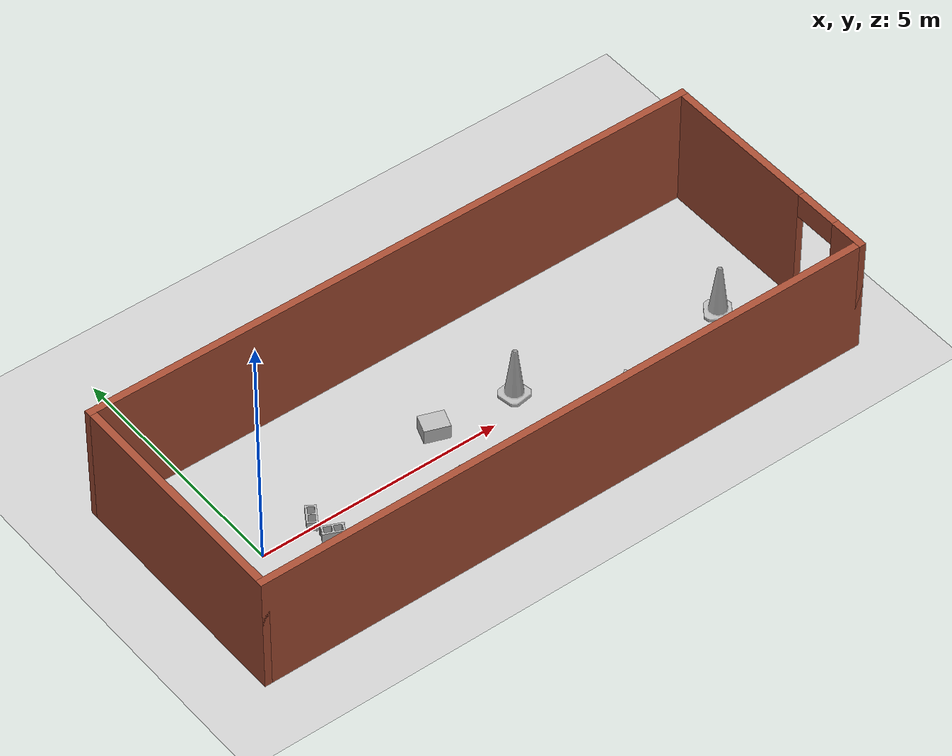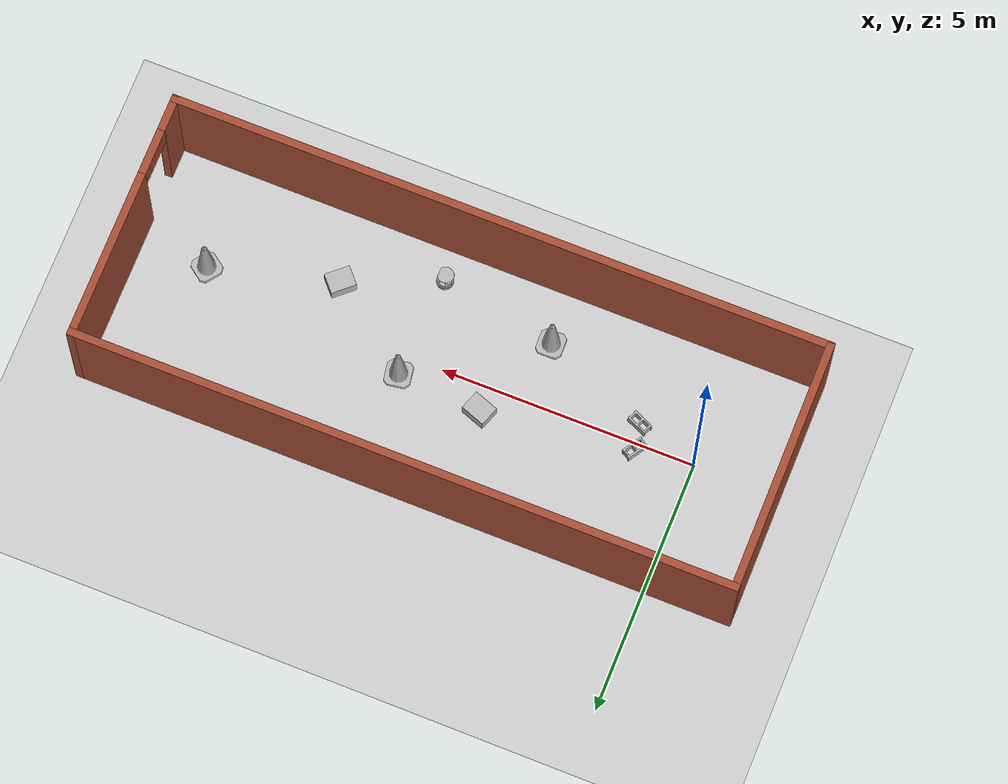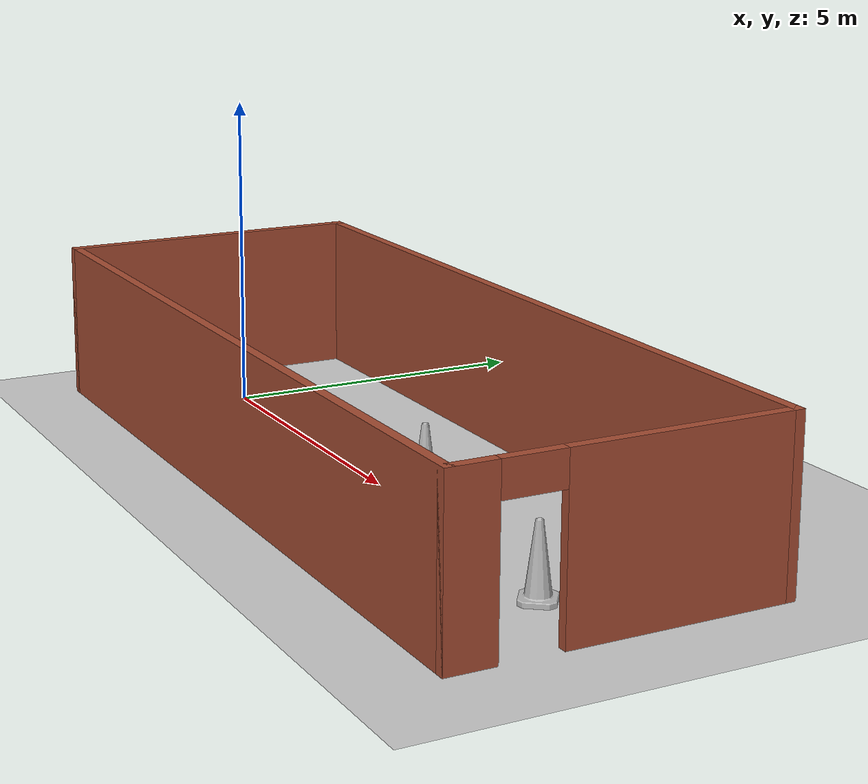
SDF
<sdf version="1.6">
 <world name="default">
  <light name="sun" type="directional">
   <pose>0 0 10 0 -0 0</pose>
   <diffuse>0.8 0.8 0.8 1</diffuse>
   <specular>0.2 0.2 0.2 1</specular>
   <attenuation>
    <range>1000</range>
    <constant>0.9</constant>
    <linear>0.01</linear>
    <quadratic>0.001</quadratic>
   </attenuation>
   <direction>-0.5 0.1 -0.9</direction>
  </light>
  <model name="ground_plane">
   <static>1</static>
   <link name="link">
    <collision name="collision">
     <geometry><plane><normal>0 0 1</normal><size>100 100</size></plane></geometry>
     <surface>
      <contact><collide_bitmask>65535</collide_bitmask></contact>
      <friction><ode><mu>100</mu><mu2>50</mu2></ode></friction>
     </surface>
    </collision>
    <visual name="visual">
     <cast_shadows>0</cast_shadows>
     <geometry><plane><normal>0 0 1</normal><size>100 100</size></plane></geometry>
     <material>
      <script><uri>file://media/materials/scripts/gazebo.material</uri><name>Gazebo/Grey</name></script>
     </material>
    </visual>
   </link>
  </model>
  <gravity>0 0 -9.8</gravity>
  <magnetic_field>6e-06 2.3e-05 -4.2e-05</magnetic_field>
  <atmosphere type="adiabatic"/>
  <physics name="default_physics" default="0" type="ode">
   <max_step_size>0.001</max_step_size>
   <real_time_factor>1</real_time_factor>
   <real_time_update_rate>1000</real_time_update_rate>
  </physics>
  <scene><ambient>0.4 0.4 0.4 1</ambient><background>0.7 0.7 0.7 1</background><shadows>1</shadows></scene>
  <audio><device>default</device></audio>
  <spherical_coordinates>
   <surface_model>EARTH_WGS84</surface_model>
   <latitude_deg>0</latitude_deg>
   <longitude_deg>0</longitude_deg>
   <elevation>0</elevation>
   <heading_deg>0</heading_deg>
  </spherical_coordinates>
  <model name="LargeRoom">
   <pose>4.78804 0.116664 0 0 -0 0</pose>
   <link name="Wall_0">
    <collision name="Wall_0_Collision">
     <geometry><box><size>5 0.15 2.5</size></box></geometry>
     <pose>0 0 1.25 0 -0 0</pose>
    </collision>
    <visual name="Wall_0_Visual">
     <pose>0 0 1.25 0 -0 0</pose>
     <geometry><box><size>5 0.15 2.5</size></box></geometry>
     <material>
      <script><uri>file://media/materials/scripts/gazebo.material</uri><name>Gazebo/Bricks</name></script>
      <ambient>1 1 1 1</ambient>
     </material>
     <meta><layer>0</layer></meta>
    </visual>
    <pose>-6.425 0 0 0 -0 -1.5708</pose>
   </link>
   <link name="Wall_1">
    <collision name="Wall_1_Collision">
     <geometry><box><size>13 0.15 2.5</size></box></geometry>
     <pose>0 0 1.25 0 -0 0</pose>
    </collision>
    <visual name="Wall_1_Visual">
     <pose>0 0 1.25 0 -0 0</pose>
     <geometry><box><size>13 0.15 2.5</size></box></geometry>
     <material>
      <script><uri>file://media/materials/scripts/gazebo.material</uri><name>Gazebo/Bricks</name></script>
      <ambient>1 1 1 1</ambient>
     </material>
     <meta><layer>0</layer></meta>
    </visual>
    <pose>-0 -2.425 0 0 -0 0</pose>
   </link>
   <link name="Wall_2">
    <pose>6.425 0 0 0 -0 1.5708</pose>
    <visual name="Wall_2_Visual_0">
     <pose>-2.1325 0 1.25 0 -0 0</pose>
     <geometry><box><size>0.735 0.15 2.5</size></box></geometry>
     <material>
      <script><uri>file://media/materials/scripts/gazebo.material</uri><name>Gazebo/Bricks</name></script>
      <ambient>1 1 1 1</ambient>
     </material>
     <meta><layer>0</layer></meta>
    </visual>
    <collision name="Wall_2_Collision_0">
     <geometry><box><size>0.735 0.15 2.5</size></box></geometry>
     <pose>-2.1325 0 1.25 0 -0 0</pose>
    </collision>
    <visual name="Wall_2_Visual_1">
     <pose>0.8175 0 1.25 0 -0 0</pose>
     <geometry><box><size>3.365 0.15 2.5</size></box></geometry>
     <material>
      <script><uri>file://media/materials/scripts/gazebo.material</uri><name>Gazebo/Bricks</name></script>
      <ambient>1 1 1 1</ambient>
     </material>
     <meta><layer>0</layer></meta>
    </visual>
    <collision name="Wall_2_Collision_1">
     <geometry><box><size>3.365 0.15 2.5</size></box></geometry>
     <pose>0.8175 0 1.25 0 -0 0</pose>
    </collision>
    <visual name="Wall_2_Visual_2">
     <pose>-1.315 0 2.25 0 -0 0</pose>
     <geometry><box><size>0.9 0.15 0.5</size></box></geometry>
     <material>
      <script><uri>file://media/materials/scripts/gazebo.material</uri><name>Gazebo/Bricks</name></script>
      <ambient>1 1 1 1</ambient>
     </material>
     <meta><layer>0</layer></meta>
    </visual>
    <collision name="Wall_2_Collision_2">
     <geometry><box><size>0.9 0.15 0.5</size></box></geometry>
     <pose>-1.315 0 2.25 0 -0 0</pose>
    </collision>
   </link>
   <link name="Wall_3">
    <collision name="Wall_3_Collision">
     <geometry><box><size>13 0.15 2.5</size></box></geometry>
     <pose>0 0 1.25 0 -0 0</pose>
    </collision>
    <visual name="Wall_3_Visual">
     <pose>0 0 1.25 0 -0 0</pose>
     <geometry><box><size>13 0.15 2.5</size></box></geometry>
     <material>
      <script><uri>file://media/materials/scripts/gazebo.material</uri><name>Gazebo/Bricks</name></script>
      <ambient>1 1 1 1</ambient>
     </material>
     <meta><layer>0</layer></meta>
    </visual>
    <pose>-0 2.425 0 0 -0 3.14159</pose>
   </link>
   <static>1</static>
  </model>
  <model name="cardboard_box">
   <pose>4.0613 0.510236 0.149 -0 -0 -0.345268</pose>
   <link name="link">
    <inertial>
     <mass>2</mass>
     <inertia>
      <ixx>0.0416667</ixx>
      <ixy>0</ixy>
      <ixz>0</ixz>
      <iyy>0.0566667</iyy>
      <iyz>0</iyz>
      <izz>0.0683333</izz>
     </inertia>
    </inertial>
    <collision name="collision">
     <geometry><box><size>0.5 0.4 0.3</size></box></geometry>
     <surface>
      <friction><ode><mu>1</mu><mu2>1</mu2></ode></friction>
      <contact><ode><kp>1e+07</kp><kd>1</kd><min_depth>0.001</min_depth><max_vel>0.1</max_vel></ode></contact>
     </surface>
    </collision>
    <visual name="visual">
     <pose>0 0 -0.15 0 -0 0</pose>
     <geometry>
      <mesh><uri>model://cardboard_box/meshes/cardboard_box.dae</uri><scale>1.25932 1.00745 0.755591</scale></mesh>
     </geometry>
    </visual>
   </link>
  </model>
  <model name="cardboard_box_0">
   <pose>7.39566 -0.859255 0.149 0 -0 0.730395</pose>
   <link name="link">
    <inertial>
     <mass>2</mass>
     <inertia>
      <ixx>0.0416667</ixx>
      <ixy>0</ixy>
      <ixz>0</ixz>
      <iyy>0.0566667</iyy>
      <iyz>0</iyz>
      <izz>0.0683333</izz>
     </inertia>
    </inertial>
    <collision name="collision">
     <geometry><box><size>0.5 0.4 0.3</size></box></geometry>
     <surface>
      <friction><ode><mu>1</mu><mu2>1</mu2></ode></friction>
      <contact><ode><kp>1e+07</kp><kd>1</kd><min_depth>0.001</min_depth><max_vel>0.1</max_vel></ode></contact>
     </surface>
    </collision>
    <visual name="visual">
     <pose>0 0 -0.15 0 -0 0</pose>
     <geometry>
      <mesh><uri>model://cardboard_box/meshes/cardboard_box.dae</uri><scale>1.25932 1.00745 0.755591</scale></mesh>
     </geometry>
    </visual>
   </link>
  </model>
  <model name="cinder_block">
   <link name="link">
    <inertial>
     <pose>0 0 0.1016 0 -0 0</pose>
     <mass>5</mass>
     <inertia>
      <ixx>0.028705</ixx>
      <ixy>0</ixy>
      <iyy>0.073708</iyy>
      <ixz>0</ixz>
      <iyz>0</iyz>
      <izz>0.06908</izz>
     </inertia>
    </inertial>
    <visual name="visual">
     <geometry><mesh><uri>model://cinder_block/meshes/cinder_block.dae</uri></mesh></geometry>
    </visual>
    <collision name="left">
     <pose>0 -0.08465 0.1016 0 -0 0</pose>
     <geometry><box><size>0.43495 0.0339 0.2032</size></box></geometry>
     <surface>
      <contact><ode><max_vel>0.1</max_vel><min_depth>0.001</min_depth></ode></contact>
      <friction><ode><mu>1</mu><mu2>1</mu2></ode></friction>
     </surface>
    </collision>
    <collision name="right">
     <pose>0 0.08465 0.1016 0 -0 0</pose>
     <geometry><box><size>0.43495 0.0339 0.2032</size></box></geometry>
     <surface>
      <contact><ode><max_vel>0.1</max_vel><min_depth>0.001</min_depth></ode></contact>
      <friction><ode><mu>1</mu><mu2>1</mu2></ode></friction>
     </surface>
    </collision>
    <collision name="front">
     <pose>0.18625 0 0.1016 0 -0 0</pose>
     <geometry><box><size>0.0339 0.1354 0.203</size></box></geometry>
     <surface>
      <contact><ode><max_vel>0.1</max_vel><min_depth>0.001</min_depth></ode></contact>
      <friction><ode><mu>1</mu><mu2>1</mu2></ode></friction>
     </surface>
    </collision>
    <collision name="middle">
     <pose>0 0 0.1016 0 -0 0</pose>
     <geometry><box><size>0.0339 0.1354 0.203</size></box></geometry>
     <surface>
      <contact><ode><max_vel>0.1</max_vel><min_depth>0.001</min_depth></ode></contact>
      <friction><ode><mu>1</mu><mu2>1</mu2></ode></friction>
     </surface>
    </collision>
    <collision name="back">
     <pose>-0.18625 0 0.1016 0 -0 0</pose>
     <geometry><box><size>0.0339 0.1354 0.203</size></box></geometry>
     <surface>
      <contact><ode><max_vel>0.1</max_vel><min_depth>0.001</min_depth></ode></contact>
      <friction><ode><mu>1</mu><mu2>1</mu2></ode></friction>
     </surface>
    </collision>
   </link>
   <pose>1.21452 -0.369423 -6e-06 -1.1e-05 2.5e-05 -0.422058</pose>
  </model>
  <model name="cinder_block_0">
   <link name="link">
    <inertial>
     <pose>0 0 0.1016 0 -0 0</pose>
     <mass>5</mass>
     <inertia>
      <ixx>0.028705</ixx>
      <ixy>0</ixy>
      <iyy>0.073708</iyy>
      <ixz>0</ixz>
      <iyz>0</iyz>
      <izz>0.06908</izz>
     </inertia>
    </inertial>
    <visual name="visual">
     <geometry><mesh><uri>model://cinder_block/meshes/cinder_block.dae</uri></mesh></geometry>
    </visual>
    <collision name="left">
     <pose>0 -0.08465 0.1016 0 -0 0</pose>
     <geometry><box><size>0.43495 0.0339 0.2032</size></box></geometry>
     <surface>
      <contact><ode><max_vel>0.1</max_vel><min_depth>0.001</min_depth></ode></contact>
      <friction><ode><mu>1</mu><mu2>1</mu2></ode></friction>
     </surface>
    </collision>
    <collision name="right">
     <pose>0 0.08465 0.1016 0 -0 0</pose>
     <geometry><box><size>0.43495 0.0339 0.2032</size></box></geometry>
     <surface>
      <contact><ode><max_vel>0.1</max_vel><min_depth>0.001</min_depth></ode></contact>
      <friction><ode><mu>1</mu><mu2>1</mu2></ode></friction>
     </surface>
    </collision>
    <collision name="front">
     <pose>0.18625 0 0.1016 0 -0 0</pose>
     <geometry><box><size>0.0339 0.1354 0.203</size></box></geometry>
     <surface>
      <contact><ode><max_vel>0.1</max_vel><min_depth>0.001</min_depth></ode></contact>
      <friction><ode><mu>1</mu><mu2>1</mu2></ode></friction>
     </surface>
    </collision>
    <collision name="middle">
     <pose>0 0 0.1016 0 -0 0</pose>
     <geometry><box><size>0.0339 0.1354 0.203</size></box></geometry>
     <surface>
      <contact><ode><max_vel>0.1</max_vel><min_depth>0.001</min_depth></ode></contact>
      <friction><ode><mu>1</mu><mu2>1</mu2></ode></friction>
     </surface>
    </collision>
    <collision name="back">
     <pose>-0.18625 0 0.1016 0 -0 0</pose>
     <geometry><box><size>0.0339 0.1354 0.203</size></box></geometry>
     <surface>
      <contact><ode><max_vel>0.1</max_vel><min_depth>0.001</min_depth></ode></contact>
      <friction><ode><mu>1</mu><mu2>1</mu2></ode></friction>
     </surface>
    </collision>
   </link>
   <pose>1.12314 0.126439 -6e-06 2.5e-05 1.5e-05 1.01116</pose>
  </model>
  <model name="turtlebot">
   <link name="rack">
    <inertial>
     <pose>0.001453 -0.000453 0.029787 0 -0 0</pose>
     <inertia>
      <ixx>0.05864</ixx>
      <ixy>0.000124</ixy>
      <ixz>0.000615</ixz>
      <iyy>0.058786</iyy>
      <iyz>1.4e-05</iyz>
      <izz>1.53244</izz>
     </inertia>
     <mass>2.234</mass>
    </inertial>
    <collision name="plate_0_collision">
     <pose>-0.04334 0 0.084757 0 -0 0</pose>
     <geometry><box><size>0.233502 0.314845 0.006401</size></box></geometry>
    </collision>
    <visual name="plate_0_visual">
     <pose>-0.04334 0 0.084757 0 -0 0</pose>
     <geometry><mesh><uri>model://turtlebot/meshes/plate_0_logo.dae</uri></mesh></geometry>
    </visual>
    <collision name="plate_1_collision">
     <pose>-0.00266 0 0.141907 0 -0 0</pose>
     <geometry><box><size>0.314856 0.314856 0.006401</size></box></geometry>
    </collision>
    <visual name="plate_1_visual">
     <pose>-0.00266 0 0.141907 0 -0 0</pose>
     <geometry><mesh><uri>model://turtlebot/meshes/plate_1_logo.dae</uri></mesh></geometry>
    </visual>
    <collision name="plate_2_collision">
     <pose>-0.00266 0 0.199108 0 -0 0</pose>
     <geometry><box><size>0.314856 0.314856 0.006401</size></box></geometry>
    </collision>
    <visual name="plate_2_visual">
     <pose>-0.00266 0 0.199108 0 -0 0</pose>
     <geometry><mesh><uri>model://turtlebot/meshes/plate_1_logo.dae</uri></mesh></geometry>
    </visual>
    <collision name="plate_3_collision">
     <pose>-0.01582 0 0.405457 0 -0 0</pose>
     <geometry><box><size>0.288 0.315 0.006401</size></box></geometry>
    </collision>
    <visual name="plate_3_visual">
     <pose>-0.01582 0 0.405457 0 -0 0</pose>
     <geometry><mesh><uri>model://turtlebot/meshes/plate_2_logo.dae</uri></mesh></geometry>
    </visual>
    <collision name="spacer_0_collision">
     <pose>-0.00254 0.111468 0.079992 0 -0 0</pose>
     <geometry><cylinder><radius>0.0127</radius><length>0.003175</length></cylinder></geometry>
    </collision>
    <visual name="spacer_0_visual">
     <pose>-0.00254 0.111468 0.079992 0 -0 0</pose>
     <geometry><mesh><uri>model://turtlebot/meshes/68-02403-125_Spacer.dae</uri></mesh></geometry>
    </visual>
    <collision name="spacer_1_collision">
     <pose>-0.00254 -0.111468 0.079992 0 -0 0</pose>
     <geometry><cylinder><radius>0.0127</radius><length>0.003175</length></cylinder></geometry>
    </collision>
    <visual name="spacer_1_visual">
     <pose>-0.00254 -0.111468 0.079992 0 -0 0</pose>
     <geometry><mesh><uri>model://turtlebot/meshes/68-02403-125_Spacer.dae</uri></mesh></geometry>
    </visual>
    <collision name="spacer_2_collision">
     <pose>-0.07239 -0.111468 0.079992 0 -0 0</pose>
     <geometry><cylinder><radius>0.0127</radius><length>0.003175</length></cylinder></geometry>
    </collision>
    <visual name="spacer_2_visual">
     <pose>-0.07239 -0.111468 0.079992 0 -0 0</pose>
     <geometry><mesh><uri>model://turtlebot/meshes/68-02403-125_Spacer.dae</uri></mesh></geometry>
    </visual>
    <collision name="spacer_3_collision">
     <pose>-0.07239 0.111468 0.079992 0 -0 0</pose>
     <geometry><cylinder><radius>0.0127</radius><length>0.003175</length></cylinder></geometry>
    </collision>
    <visual name="spacer_3_visual">
     <pose>-0.07239 0.111468 0.079992 0 -0 0</pose>
     <geometry><mesh><uri>model://turtlebot/meshes/68-02403-125_Spacer.dae</uri></mesh></geometry>
    </visual>
    <collision name="standoff_2in_0_collision">
     <pose>0.06764 0.13142 0.08798 0 -0 0</pose>
     <geometry><cylinder><radius>0.0381</radius><length>0.0635</length></cylinder></geometry>
    </collision>
    <visual name="standoff_2in_0_visual">
     <pose>0.06764 0.13142 0.08798 0 -0 0</pose>
     <geometry>
      <mesh><uri>model://turtlebot/meshes/68-04552-2000-RA_Turtlebot_M-F_Standoff.dae</uri></mesh>
     </geometry>
    </visual>
    <collision name="standoff_2in_1_collision">
     <pose>0.06764 -0.13142 0.08798 0 -0 0</pose>
     <geometry><cylinder><radius>0.0381</radius><length>0.0635</length></cylinder></geometry>
    </collision>
    <visual name="standoff_2in_1_visual">
     <pose>0.06764 -0.13142 0.08798 0 -0 0</pose>
     <geometry>
      <mesh><uri>model://turtlebot/meshes/68-04552-2000-RA_Turtlebot_M-F_Standoff.dae</uri></mesh>
     </geometry>
    </visual>
    <collision name="standoff_2in_2_collision">
     <pose>-0.052832 -0.13142 0.08798 0 -0 0</pose>
     <geometry><cylinder><radius>0.0381</radius><length>0.0635</length></cylinder></geometry>
    </collision>
    <visual name="standoff_2in_2_visual">
     <pose>-0.052832 -0.13142 0.08798 0 -0 0</pose>
     <geometry>
      <mesh><uri>model://turtlebot/meshes/68-04552-2000-RA_Turtlebot_M-F_Standoff.dae</uri></mesh>
     </geometry>
    </visual>
    <collision name="standoff_2in_3_collision">
     <pose>-0.052832 0.13142 0.08798 0 -0 0</pose>
     <geometry><cylinder><radius>0.0381</radius><length>0.0635</length></cylinder></geometry>
    </collision>
    <visual name="standoff_2in_3_visual">
     <pose>-0.052832 0.13142 0.08798 0 -0 0</pose>
     <geometry>
      <mesh><uri>model://turtlebot/meshes/68-04552-2000-RA_Turtlebot_M-F_Standoff.dae</uri></mesh>
     </geometry>
    </visual>
    <collision name="standoff_2in_4_collision">
     <pose>0.06764 0.13142 0.14513 0 -0 0</pose>
     <geometry><cylinder><radius>0.0381</radius><length>0.0635</length></cylinder></geometry>
    </collision>
    <visual name="standoff_2in_4_visual">
     <pose>0.06764 0.13142 0.14513 0 -0 0</pose>
     <geometry>
      <mesh><uri>model://turtlebot/meshes/68-04552-2000-RA_Turtlebot_M-F_Standoff.dae</uri></mesh>
     </geometry>
    </visual>
    <collision name="standoff_2in_5_collision">
     <pose>0.06764 -0.13142 0.14513 0 -0 0</pose>
     <geometry><cylinder><radius>0.0381</radius><length>0.0635</length></cylinder></geometry>
    </collision>
    <visual name="standoff_2in_5_visual">
     <pose>0.06764 -0.13142 0.14513 0 -0 0</pose>
     <geometry>
      <mesh><uri>model://turtlebot/meshes/68-04552-2000-RA_Turtlebot_M-F_Standoff.dae</uri></mesh>
     </geometry>
    </visual>
    <collision name="standoff_2in_6_collision">
     <pose>-0.052832 -0.13142 0.14513 0 -0 0</pose>
     <geometry><cylinder><radius>0.0381</radius><length>0.0635</length></cylinder></geometry>
    </collision>
    <visual name="standoff_2in_6_visual">
     <pose>-0.052832 -0.13142 0.14513 0 -0 0</pose>
     <geometry>
      <mesh><uri>model://turtlebot/meshes/68-04552-2000-RA_Turtlebot_M-F_Standoff.dae</uri></mesh>
     </geometry>
    </visual>
    <collision name="standoff_2in_7_collision">
     <pose>-0.052832 0.13142 0.14513 0 -0 0</pose>
     <geometry><cylinder><radius>0.0381</radius><length>0.0635</length></cylinder></geometry>
    </collision>
    <visual name="standoff_2in_7_visual">
     <pose>-0.052832 0.13142 0.14513 0 -0 0</pose>
     <geometry>
      <mesh><uri>model://turtlebot/meshes/68-04552-2000-RA_Turtlebot_M-F_Standoff.dae</uri></mesh>
     </geometry>
    </visual>
    <collision name="standoff_8in_0_collision">
     <pose>0.06764 0.13142 0.20228 0 -0 0</pose>
     <geometry><cylinder><radius>0.011113</radius><length>0.2032</length></cylinder></geometry>
    </collision>
    <visual name="standoff_8in_0_visual">
     <pose>0.06764 0.13142 0.20228 0 -0 0</pose>
     <geometry>
      <mesh><uri>model://turtlebot/meshes/68-02421-8000-RA_Turtlebot_F-F_Standoff.dae</uri></mesh>
     </geometry>
    </visual>
    <collision name="standoff_8in_1_collision">
     <pose>0.06764 -0.13142 0.20228 0 -0 0</pose>
     <geometry><cylinder><radius>0.011113</radius><length>0.2032</length></cylinder></geometry>
    </collision>
    <visual name="standoff_8in_1_visual">
     <pose>0.06764 -0.13142 0.20228 0 -0 0</pose>
     <geometry>
      <mesh><uri>model://turtlebot/meshes/68-02421-8000-RA_Turtlebot_F-F_Standoff.dae</uri></mesh>
     </geometry>
    </visual>
    <collision name="standoff_8in_2_collision">
     <pose>-0.052832 -0.13142 0.20228 0 -0 0</pose>
     <geometry><cylinder><radius>0.011113</radius><length>0.2032</length></cylinder></geometry>
    </collision>
    <visual name="standoff_8in_2_visual">
     <pose>-0.052832 -0.13142 0.20228 0 -0 0</pose>
     <geometry>
      <mesh><uri>model://turtlebot/meshes/68-02421-8000-RA_Turtlebot_F-F_Standoff.dae</uri></mesh>
     </geometry>
    </visual>
    <collision name="standoff_8in_3_collision">
     <pose>-0.052832 0.13142 0.20228 0 -0 0</pose>
     <geometry><cylinder><radius>0.011113</radius><length>0.2032</length></cylinder></geometry>
    </collision>
    <visual name="standoff_8in_3_visual">
     <pose>-0.052832 0.13142 0.20228 0 -0 0</pose>
     <geometry>
      <mesh><uri>model://turtlebot/meshes/68-02421-8000-RA_Turtlebot_F-F_Standoff.dae</uri></mesh>
     </geometry>
    </visual>
    <collision name="standoff_kinect_0_collision">
     <pose>-0.105098 0.098 0.202308 0 -0 0</pose>
     <geometry><cylinder><radius>0.001111</radius><length>0.008585</length></cylinder></geometry>
    </collision>
    <visual name="standoff_kinect_0_visual">
     <pose>-0.105098 0.098 0.202308 0 -0 0</pose>
     <geometry><mesh><uri>model://turtlebot/meshes/68-04556-RA_Kinect_Standoff_Assy.dae</uri></mesh></geometry>
    </visual>
    <collision name="standoff_kinect_1_collision">
     <pose>-0.105098 -0.098 0.202308 0 -0 0</pose>
     <geometry><cylinder><radius>0.001111</radius><length>0.008585</length></cylinder></geometry>
    </collision>
    <visual name="standoff_kinect_1_visual">
     <pose>-0.105098 -0.098 0.202308 0 -0 0</pose>
     <geometry><mesh><uri>model://turtlebot/meshes/68-04556-RA_Kinect_Standoff_Assy.dae</uri></mesh></geometry>
    </visual>
    <sensor name="laser" type="ray">
     <pose>-0.065 0 0.092 0 -0 0</pose>
     <ray>
      <scan>
       <horizontal>
        <samples>180</samples>
        <resolution>1</resolution>
        <min_angle>-2.26893</min_angle>
        <max_angle>2.26893</max_angle>
       </horizontal>
       <vertical><samples>1</samples><min_angle>0</min_angle><max_angle>0</max_angle></vertical>
      </scan>
      <range><min>0.08</min><max>10</max><resolution>0.01</resolution></range>
     </ray>
     <update_rate>20</update_rate>
    </sensor>
   </link>
   <link name="create::base">
    <inertial>
     <pose>0.001453 -0.000453 0.029787 0 -0 0</pose>
     <inertia>
      <ixx>0.05864</ixx>
      <ixy>0.000124</ixy>
      <ixz>0.000615</ixz>
      <iyy>0.058786</iyy>
      <iyz>1.4e-05</iyz>
      <izz>1.53244</izz>
     </inertia>
     <mass>2.234</mass>
    </inertial>
    <collision name="base_collision">
     <pose>0 0 0.0478 0 -0 0</pose>
     <geometry><cylinder><radius>0.016495</radius><length>0.061163</length></cylinder></geometry>
    </collision>
    <visual name="base_visual">
     <pose>0 0 0.0478 0 -0 0</pose>
     <geometry><mesh><uri>model://create/meshes/create_body.dae</uri></mesh></geometry>
    </visual>
    <collision name="front_wheel_collision">
     <pose>0.13 0 0.017 -0 1.5707 1.5707</pose>
     <geometry><sphere><radius>0.018</radius></sphere></geometry>
     <surface>
      <friction><ode><mu>0</mu><mu2>0</mu2><fdir1>0 0 0</fdir1><slip1>0</slip1><slip2>0</slip2></ode></friction>
     </surface>
    </collision>
    <visual name="front_wheel_visual">
     <pose>0.13 0 0.017 -0 1.5707 1.5707</pose>
     <geometry><sphere><radius>0.009</radius></sphere></geometry>
    </visual>
    <collision name="rear_wheel_collision">
     <pose>-0.13 0 0.017 -0 1.5707 1.5707</pose>
     <geometry><sphere><radius>0.015</radius></sphere></geometry>
     <surface>
      <friction><ode><mu>0</mu><mu2>0</mu2><fdir1>0 0 0</fdir1><slip1>0</slip1><slip2>0</slip2></ode></friction>
     </surface>
    </collision>
    <visual name="rear_wheel_visual">
     <pose>-0.13 0 0.017 -0 1.5707 1.5707</pose>
     <geometry><sphere><radius>0.0075</radius></sphere></geometry>
    </visual>
    <sensor name="left_cliff_sensor" type="ray">
     <pose>0.07 0.14 0.027 0 1.57079 0</pose>
     <ray>
      <scan>
       <horizontal>
        <samples>1</samples>
        <resolution>1</resolution>
        <min_angle>0</min_angle>
        <max_angle>0</max_angle>
       </horizontal>
       <vertical><samples>1</samples><min_angle>0</min_angle><max_angle>0</max_angle></vertical>
      </scan>
      <range><min>0.01</min><max>0.04</max><resolution>0.1</resolution></range>
     </ray>
    </sensor>
    <sensor name="leftfront_cliff_sensor" type="ray">
     <pose>0.15 0.04 0.027 0 1.57079 0</pose>
     <ray>
      <scan>
       <horizontal>
        <samples>1</samples>
        <resolution>1</resolution>
        <min_angle>0</min_angle>
        <max_angle>0</max_angle>
       </horizontal>
       <vertical><samples>1</samples><min_angle>0</min_angle><max_angle>0</max_angle></vertical>
      </scan>
      <range><min>0.01</min><max>0.04</max><resolution>0.1</resolution></range>
     </ray>
    </sensor>
    <sensor name="right_cliff_sensor" type="ray">
     <pose>0.07 -0.14 0.027 0 1.57079 0</pose>
     <ray>
      <scan>
       <horizontal>
        <samples>1</samples>
        <resolution>1</resolution>
        <min_angle>0</min_angle>
        <max_angle>0</max_angle>
       </horizontal>
       <vertical><samples>1</samples><min_angle>0</min_angle><max_angle>0</max_angle></vertical>
      </scan>
      <range><min>0.01</min><max>0.04</max><resolution>0.1</resolution></range>
     </ray>
    </sensor>
    <sensor name="rightfront_cliff_sensor" type="ray">
     <pose>0.15 -0.04 0.027 0 1.57079 0</pose>
     <ray>
      <scan>
       <horizontal>
        <samples>1</samples>
        <resolution>1</resolution>
        <min_angle>0</min_angle>
        <max_angle>0</max_angle>
       </horizontal>
       <vertical><samples>1</samples><min_angle>0</min_angle><max_angle>0</max_angle></vertical>
      </scan>
      <range><min>0.01</min><max>0.04</max><resolution>0.1</resolution></range>
     </ray>
    </sensor>
    <sensor name="wall_sensor" type="ray">
     <pose>0.09 -0.12 0.059 0 0 -1</pose>
     <ray>
      <scan>
       <horizontal>
        <samples>1</samples>
        <resolution>1</resolution>
        <min_angle>0</min_angle>
        <max_angle>0</max_angle>
       </horizontal>
       <vertical><samples>1</samples><min_angle>0</min_angle><max_angle>0</max_angle></vertical>
      </scan>
      <range><min>0.016</min><max>0.04</max><resolution>0.1</resolution></range>
     </ray>
    </sensor>
   </link>
   <link name="create::left_wheel">
    <pose>0 0.13 0.032 0 -0 0</pose>
    <inertial>
     <inertia><ixx>0.001</ixx><ixy>0</ixy><ixz>0</ixz><iyy>0.001</iyy><iyz>0</iyz><izz>0.001</izz></inertia>
     <mass>0.01</mass>
    </inertial>
    <collision name="collision">
     <pose>0 0 0 -0 1.5707 1.5707</pose>
     <geometry><cylinder><radius>0.033</radius><length>0.023</length></cylinder></geometry>
     <surface>
      <friction><ode><mu>10</mu><mu2>10</mu2><fdir1>0 0 0</fdir1><slip1>0</slip1><slip2>0</slip2></ode></friction>
     </surface>
    </collision>
    <visual name="visual">
     <pose>0 0 0 -0 1.5707 1.5707</pose>
     <geometry><cylinder><radius>0.033</radius><length>0.023</length></cylinder></geometry>
    </visual>
   </link>
   <link name="create::right_wheel">
    <pose>0 -0.13 0.032 0 -0 0</pose>
    <inertial>
     <inertia><ixx>0.001</ixx><ixy>0</ixy><ixz>0</ixz><iyy>0.001</iyy><iyz>0</iyz><izz>0.001</izz></inertia>
     <mass>0.01</mass>
    </inertial>
    <collision name="collision">
     <pose>0 0 0 -0 1.5707 1.5707</pose>
     <geometry><cylinder><radius>0.033</radius><length>0.023</length></cylinder></geometry>
     <surface>
      <friction><ode><mu>10</mu><mu2>10</mu2><fdir1>0 0 0</fdir1><slip1>0</slip1><slip2>0</slip2></ode></friction>
     </surface>
    </collision>
    <visual name="visual">
     <pose>0 0 0 -0 1.5707 1.5707</pose>
     <geometry><cylinder><radius>0.033</radius><length>0.023</length></cylinder></geometry>
    </visual>
   </link>
   <joint name="create::left_wheel" type="revolute">
    <parent>create::base</parent>
    <child>create::left_wheel</child>
    <axis>
     <xyz>0 1 0</xyz>
     <use_parent_model_frame>1</use_parent_model_frame>
     <limit><lower>-1e+16</lower><upper>1e+16</upper></limit>
     <dynamics><spring_reference>0</spring_reference><spring_stiffness>0</spring_stiffness></dynamics>
    </axis>
   </joint>
   <joint name="create::right_wheel" type="revolute">
    <parent>create::base</parent>
    <child>create::right_wheel</child>
    <axis>
     <xyz>0 1 0</xyz>
     <use_parent_model_frame>1</use_parent_model_frame>
     <limit><lower>-1e+16</lower><upper>1e+16</upper></limit>
     <dynamics><spring_reference>0</spring_reference><spring_stiffness>0</spring_stiffness></dynamics>
    </axis>
   </joint>
   <link name="kinect::link">
    <inertial>
     <mass>0.1</mass>
     <inertia><ixx>1</ixx><ixy>0</ixy><ixz>0</ixz><iyy>1</iyy><iyz>0</iyz><izz>1</izz></inertia>
    </inertial>
    <collision name="collision"><geometry><box><size>0.073 0.276 0.072</size></box></geometry></collision>
    <visual name="visual"><geometry><mesh><uri>model://kinect/meshes/kinect.dae</uri></mesh></geometry></visual>
    <sensor name="camera" type="depth">
     <update_rate>20</update_rate>
     <camera name="__default__">
      <horizontal_fov>1.0472</horizontal_fov>
      <image><width>640</width><height>480</height><format>R8G8B8</format></image>
      <clip><near>0.05</near><far>3</far></clip>
     </camera>
    </sensor>
    <pose>-0.087098 0 0.303857 0 -0 0</pose>
   </link>
   <joint name="create_rack" type="revolute">
    <parent>create::base</parent>
    <child>rack</child>
    <axis>
     <xyz>0 0 1</xyz>
     <limit><lower>0</lower><upper>0</upper></limit>
     <use_parent_model_frame>1</use_parent_model_frame>
     <dynamics><spring_reference>0</spring_reference><spring_stiffness>0</spring_stiffness></dynamics>
    </axis>
   </joint>
   <joint name="kinect_rack" type="revolute">
    <parent>kinect::link</parent>
    <child>rack</child>
    <axis>
     <xyz>0 0 1</xyz>
     <limit><lower>0</lower><upper>0</upper></limit>
     <use_parent_model_frame>1</use_parent_model_frame>
     <dynamics><spring_reference>0</spring_reference><spring_stiffness>0</spring_stiffness></dynamics>
    </axis>
   </joint>
   <pose>5.6025 -1.6334 0.000823 -0.000195 -0.021051 -3.4e-05</pose>
  </model>
  <model name="Construction Cone">
   <link name="link">
    <collision name="collision">
     <geometry>
      <mesh><scale>10 10 10</scale><uri>model://construction_cone/meshes/construction_cone.dae</uri></mesh>
     </geometry>
    </collision>
    <visual name="visual">
     <geometry>
      <mesh><scale>10 10 10</scale><uri>model://construction_cone/meshes/construction_cone.dae</uri></mesh>
     </geometry>
    </visual>
    <inertial>
     <inertia><ixx>1</ixx><ixy>0</ixy><ixz>0</ixz><iyy>1</iyy><iyz>0</iyz><izz>1</izz></inertia>
     <mass>1</mass>
    </inertial>
   </link>
   <pose>5.72985 0.376584 -6e-06 -4e-06 -0 0.156693</pose>
  </model>
  <model name="Construction Cone_0">
   <link name="link">
    <collision name="collision">
     <geometry>
      <mesh><scale>10 10 10</scale><uri>model://construction_cone/meshes/construction_cone.dae</uri></mesh>
     </geometry>
    </collision>
    <visual name="visual">
     <geometry>
      <mesh><scale>10 10 10</scale><uri>model://construction_cone/meshes/construction_cone.dae</uri></mesh>
     </geometry>
    </visual>
    <inertial>
     <inertia><ixx>1</ixx><ixy>0</ixy><ixz>0</ixz><iyy>1</iyy><iyz>0</iyz><izz>1</izz></inertia>
     <mass>1</mass>
    </inertial>
   </link>
   <pose>3.30912 -1.22047 -5e-06 -4e-06 1e-06 0.019422</pose>
  </model>
  <model name="Construction Cone_1">
   <link name="link">
    <collision name="collision">
     <geometry>
      <mesh><scale>10 10 10</scale><uri>model://construction_cone/meshes/construction_cone.dae</uri></mesh>
     </geometry>
    </collision>
    <visual name="visual">
     <geometry>
      <mesh><scale>10 10 10</scale><uri>model://construction_cone/meshes/construction_cone.dae</uri></mesh>
     </geometry>
    </visual>
    <inertial>
     <inertia><ixx>1</ixx><ixy>0</ixy><ixz>0</ixz><iyy>1</iyy><iyz>0</iyz><izz>1</izz></inertia>
     <mass>1</mass>
    </inertial>
   </link>
   <pose>9.84471 -0.236343 -0 0 0 -0.640744</pose>
  </model>
 </world>
</sdf>
